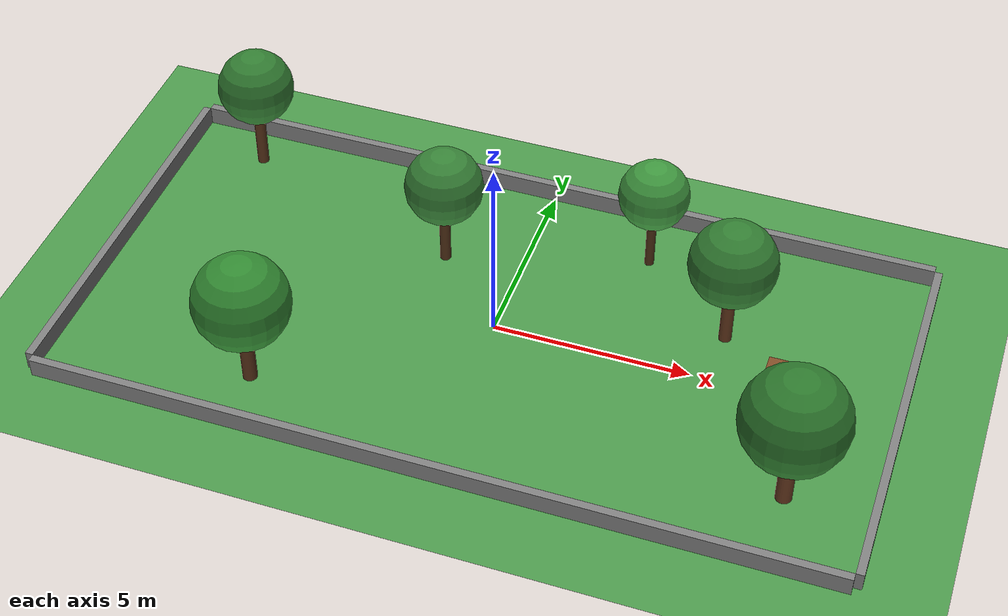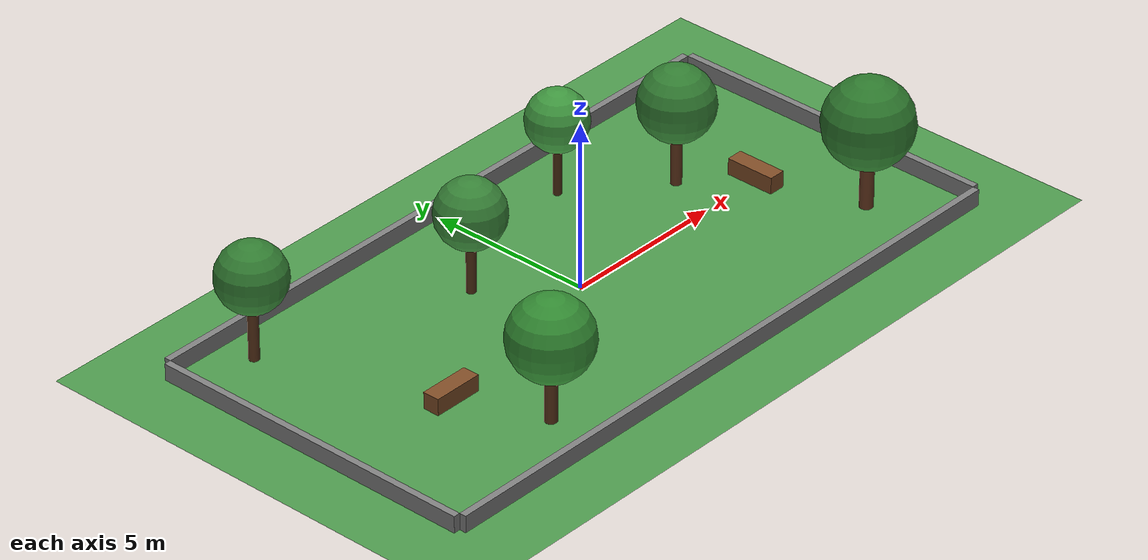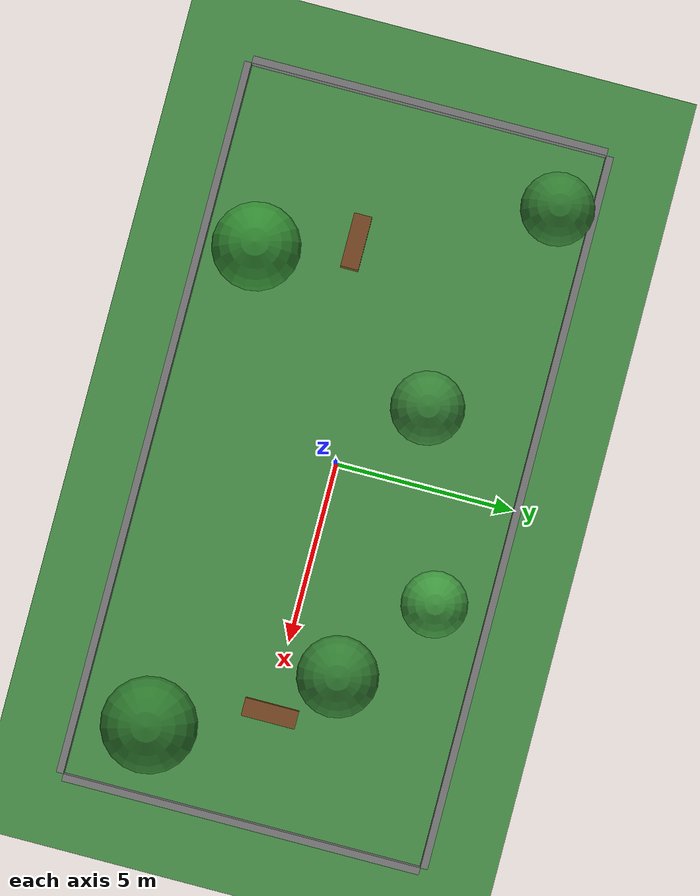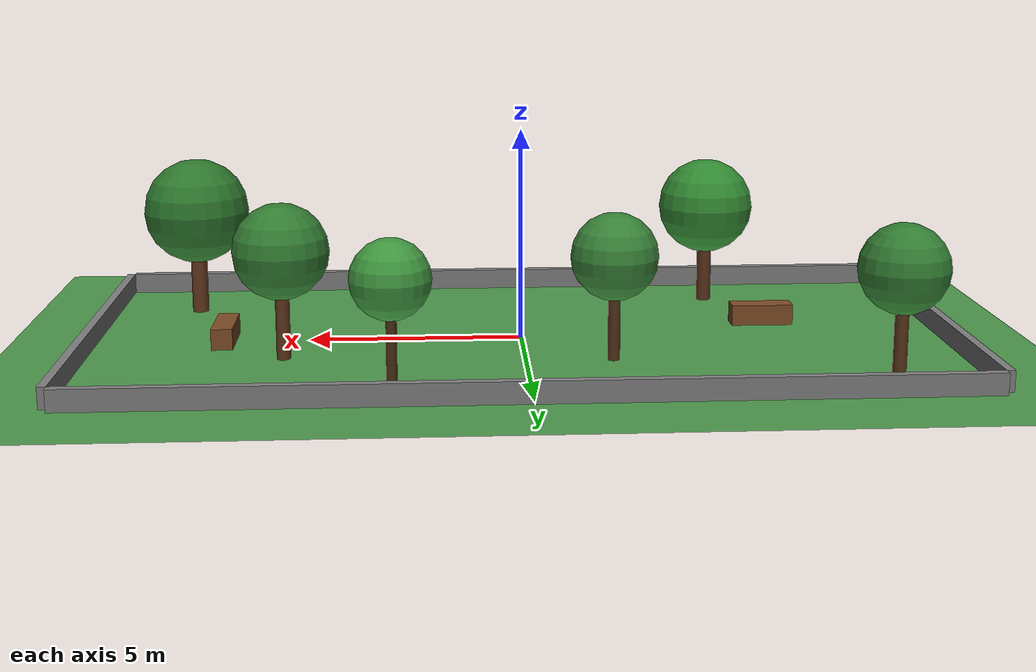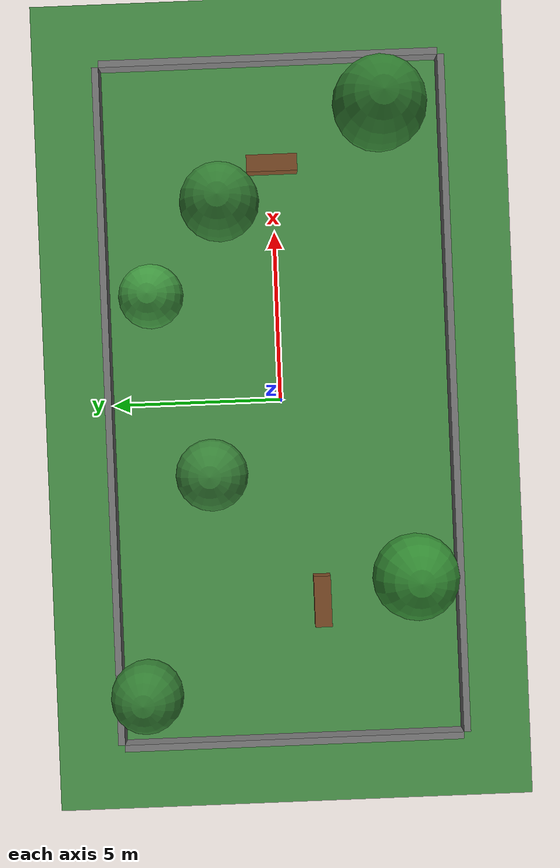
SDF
<?xml version="1.0" ?>
<sdf version="1.6">
  <world name="med_cim_mapping">
    <!-- Physics -->
    <physics type="ode">
      <max_step_size>0.001</max_step_size>
      <real_time_factor>1</real_time_factor>
      <real_time_update_rate>1000</real_time_update_rate>
    </physics>

    <!-- Lighting -->
    <include>
      <uri>model://sun</uri>
    </include>

    <!-- Ground plane with grass texture -->
    <model name="ground_plane">
      <static>true</static>
      <link name="link">
        <collision name="collision">
          <geometry>
            <plane>
              <normal>0 0 1</normal>
              <size>20 10</size>
            </plane>
          </geometry>
          <surface>
            <friction>
              <ode>
                <mu>100</mu>
                <mu2>50</mu2>
              </ode>
            </friction>
          </surface>
        </collision>
        <visual name="visual">
          <cast_shadows>false</cast_shadows>
          <geometry>
            <plane>
              <normal>0 0 1</normal>
              <size>20 10</size>
            </plane>
          </geometry>
          <material>
            <ambient>0.2 0.5 0.2 1</ambient>
            <diffuse>0.3 0.6 0.3 1</diffuse>
            <specular>0.1 0.1 0.1 1</specular>
          </material>
        </visual>
      </link>
    </model>

    <!-- Boundary walls -->
    <model name="wall_north">
      <static>true</static>
      <pose>0 5.1 0.25 0 0 0</pose>
      <link name="link">
        <collision name="collision">
          <geometry>
            <box><size>20 0.2 0.5</size></box>
          </geometry>
        </collision>
        <visual name="visual">
          <geometry>
            <box><size>20 0.2 0.5</size></box>
          </geometry>
          <material>
            <ambient>0.5 0.5 0.5 1</ambient>
          </material>
        </visual>
      </link>
    </model>

    <model name="wall_south">
      <static>true</static>
      <pose>0 -5.1 0.25 0 0 0</pose>
      <link name="link">
        <collision name="collision">
          <geometry>
            <box><size>20 0.2 0.5</size></box>
          </geometry>
        </collision>
        <visual name="visual">
          <geometry>
            <box><size>20 0.2 0.5</size></box>
          </geometry>
          <material>
            <ambient>0.5 0.5 0.5 1</ambient>
          </material>
        </visual>
      </link>
    </model>

    <model name="wall_east">
      <static>true</static>
      <pose>10.1 0 0.25 0 0 0</pose>
      <link name="link">
        <collision name="collision">
          <geometry>
            <box><size>0.2 10 0.5</size></box>
          </geometry>
        </collision>
        <visual name="visual">
          <geometry>
            <box><size>0.2 10 0.5</size></box>
          </geometry>
          <material>
            <ambient>0.5 0.5 0.5 1</ambient>
          </material>
        </visual>
      </link>
    </model>

    <model name="wall_west">
      <static>true</static>
      <pose>-10.1 0 0.25 0 0 0</pose>
      <link name="link">
        <collision name="collision">
          <geometry>
            <box><size>0.2 10 0.5</size></box>
          </geometry>
        </collision>
        <visual name="visual">
          <geometry>
            <box><size>0.2 10 0.5</size></box>
          </geometry>
          <material>
            <ambient>0.5 0.5 0.5 1</ambient>
          </material>
        </visual>
      </link>
    </model>

    <!-- Bench -->
    <model name="bench_1">
      <static>true</static>
      <pose>7.0 0 0.25 0 0 1.57</pose>
      <link name="link">
        <collision name="collision">
          <geometry>
            <box><size>1.5 0.5 0.5</size></box>
          </geometry>
        </collision>
        <visual name="visual">
          <geometry>
            <box><size>1.5 0.5 0.5</size></box>
          </geometry>
          <material>
            <ambient>0.4 0.25 0.1 1</ambient>
            <diffuse>0.5 0.3 0.15 1</diffuse>
          </material>
        </visual>
      </link>
    </model>

    <!-- Trees -->
    <model name="tree_1">
      <static>true</static>
      <pose>-8.0 4.0 0 0 0 0</pose>
      <link name="trunk">
        <pose>0 0 1.0 0 0 0</pose>
        <collision name="collision">
          <geometry>
            <cylinder><radius>0.15</radius><length>2.0</length></cylinder>
          </geometry>
        </collision>
        <visual name="visual">
          <geometry>
            <cylinder><radius>0.15</radius><length>2.0</length></cylinder>
          </geometry>
          <material>
            <ambient>0.35 0.2 0.1 1</ambient>
          </material>
        </visual>
      </link>
      <link name="foliage">
        <pose>0 0 2.5 0 0 0</pose>
        <visual name="visual">
          <geometry>
            <sphere><radius>1.0</radius></sphere>
          </geometry>
          <material>
            <ambient>0.1 0.4 0.1 1</ambient>
            <diffuse>0.2 0.5 0.2 1</diffuse>
          </material>
        </visual>
      </link>
    </model>

    <model name="tree_2">
      <static>true</static>
      <pose>-5.0 -3.5 0 0 0 0</pose>
      <link name="trunk">
        <pose>0 0 1.0 0 0 0</pose>
        <collision name="collision">
          <geometry>
            <cylinder><radius>0.18</radius><length>2.0</length></cylinder>
          </geometry>
        </collision>
        <visual name="visual">
          <geometry>
            <cylinder><radius>0.18</radius><length>2.0</length></cylinder>
          </geometry>
          <material>
            <ambient>0.35 0.2 0.1 1</ambient>
          </material>
        </visual>
      </link>
      <link name="foliage">
        <pose>0 0 2.5 0 0 0</pose>
        <visual name="visual">
          <geometry>
            <sphere><radius>1.2</radius></sphere>
          </geometry>
          <material>
            <ambient>0.1 0.45 0.1 1</ambient>
            <diffuse>0.2 0.55 0.2 1</diffuse>
          </material>
        </visual>
      </link>
    </model>

    <model name="tree_3">
      <static>true</static>
      <pose>3.0 3.5 0 0 0 0</pose>
      <link name="trunk">
        <pose>0 0 1.0 0 0 0</pose>
        <collision name="collision">
          <geometry>
            <cylinder><radius>0.12</radius><length>2.0</length></cylinder>
          </geometry>
        </collision>
        <visual name="visual">
          <geometry>
            <cylinder><radius>0.12</radius><length>2.0</length></cylinder>
          </geometry>
          <material>
            <ambient>0.3 0.18 0.08 1</ambient>
          </material>
        </visual>
      </link>
      <link name="foliage">
        <pose>0 0 2.3 0 0 0</pose>
        <visual name="visual">
          <geometry>
            <sphere><radius>0.9</radius></sphere>
          </geometry>
          <material>
            <ambient>0.15 0.5 0.15 1</ambient>
            <diffuse>0.25 0.6 0.25 1</diffuse>
          </material>
        </visual>
      </link>
    </model>

    <model name="tree_4">
      <static>true</static>
      <pose>8.0 -3.0 0 0 0 0</pose>
      <link name="trunk">
        <pose>0 0 1.0 0 0 0</pose>
        <collision name="collision">
          <geometry>
            <cylinder><radius>0.2</radius><length>2.0</length></cylinder>
          </geometry>
        </collision>
        <visual name="visual">
          <geometry>
            <cylinder><radius>0.2</radius><length>2.0</length></cylinder>
          </geometry>
          <material>
            <ambient>0.4 0.22 0.12 1</ambient>
          </material>
        </visual>
      </link>
      <link name="foliage">
        <pose>0 0 2.6 0 0 0</pose>
        <visual name="visual">
          <geometry>
            <sphere><radius>1.3</radius></sphere>
          </geometry>
          <material>
            <ambient>0.08 0.38 0.08 1</ambient>
            <diffuse>0.18 0.48 0.18 1</diffuse>
          </material>
        </visual>
      </link>
    </model>

    <model name="tree_5">
      <static>true</static>
      <pose>-2.0 2.0 0 0 0 0</pose>
      <link name="trunk">
        <pose>0 0 1.0 0 0 0</pose>
        <collision name="collision">
          <geometry>
            <cylinder><radius>0.14</radius><length>2.0</length></cylinder>
          </geometry>
        </collision>
        <visual name="visual">
          <geometry>
            <cylinder><radius>0.14</radius><length>2.0</length></cylinder>
          </geometry>
          <material>
            <ambient>0.32 0.19 0.09 1</ambient>
          </material>
        </visual>
      </link>
      <link name="foliage">
        <pose>0 0 2.4 0 0 0</pose>
        <visual name="visual">
          <geometry>
            <sphere><radius>1.0</radius></sphere>
          </geometry>
          <material>
            <ambient>0.12 0.42 0.12 1</ambient>
            <diffuse>0.22 0.52 0.22 1</diffuse>
          </material>
        </visual>
      </link>
    </model>

    <model name="tree_6">
      <static>true</static>
      <pose>5.5 1.5 0 0 0 0</pose>
      <link name="trunk">
        <pose>0 0 1.0 0 0 0</pose>
        <collision name="collision">
          <geometry>
            <cylinder><radius>0.16</radius><length>2.0</length></cylinder>
          </geometry>
        </collision>
        <visual name="visual">
          <geometry>
            <cylinder><radius>0.16</radius><length>2.0</length></cylinder>
          </geometry>
          <material>
            <ambient>0.38 0.21 0.11 1</ambient>
          </material>
        </visual>
      </link>
      <link name="foliage">
        <pose>0 0 2.5 0 0 0</pose>
        <visual name="visual">
          <geometry>
            <sphere><radius>1.1</radius></sphere>
          </geometry>
          <material>
            <ambient>0.1 0.4 0.1 1</ambient>
            <diffuse>0.2 0.5 0.2 1</diffuse>
          </material>
        </visual>
      </link>
    </model>

    <!-- Second bench -->
    <model name="bench_2">
      <static>true</static>
      <pose>-6.0 -1.0 0.25 0 0 0</pose>
      <link name="link">
        <collision name="collision">
          <geometry>
            <box><size>1.5 0.5 0.5</size></box>
          </geometry>
        </collision>
        <visual name="visual">
          <geometry>
            <box><size>1.5 0.5 0.5</size></box>
          </geometry>
          <material>
            <ambient>0.4 0.25 0.1 1</ambient>
            <diffuse>0.5 0.3 0.15 1</diffuse>
          </material>
        </visual>
      </link>
    </model>

    <!-- NO HUMANS - This is for mapping only -->
    <!-- NO LITTER - Litter will be detected dynamically -->

  </world>
</sdf>
